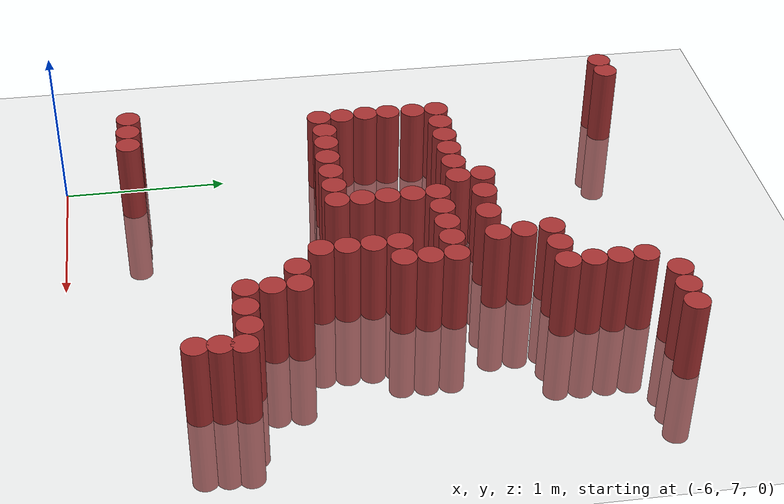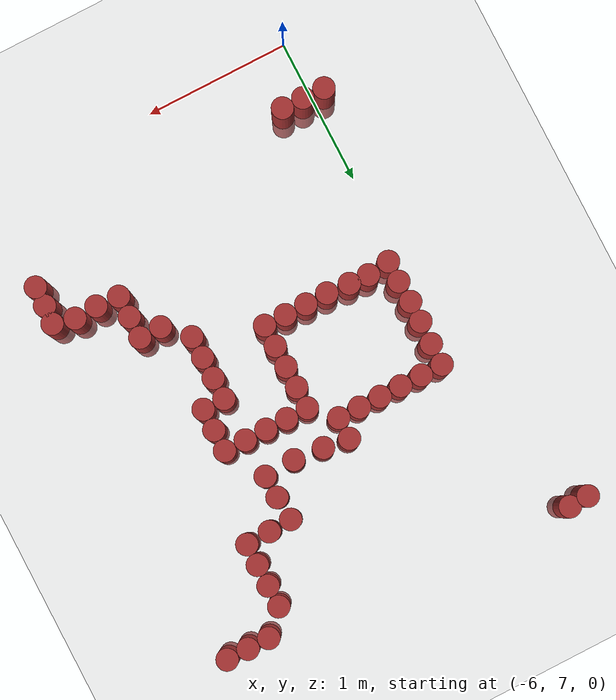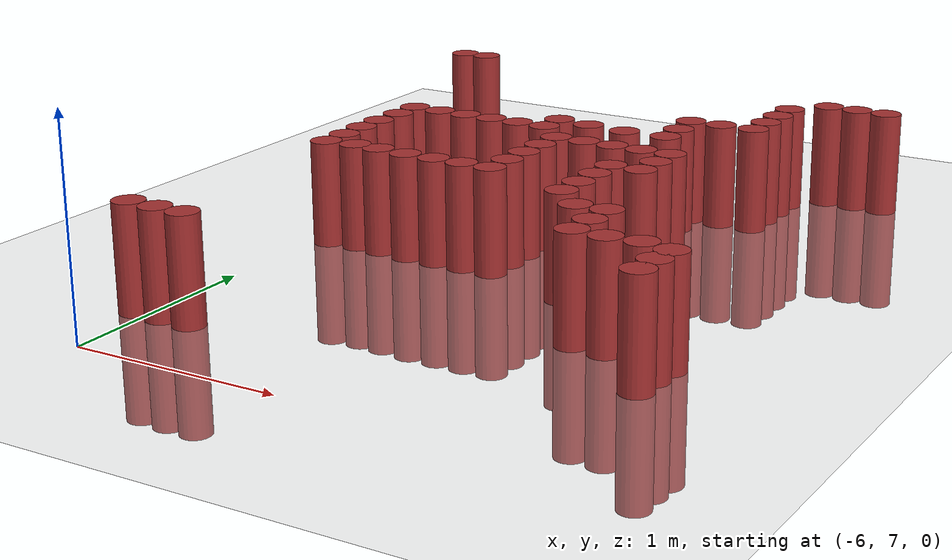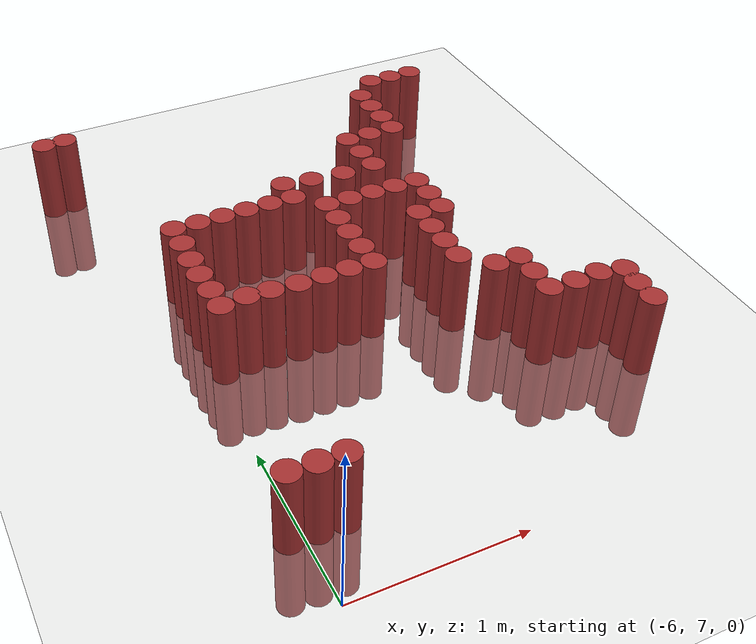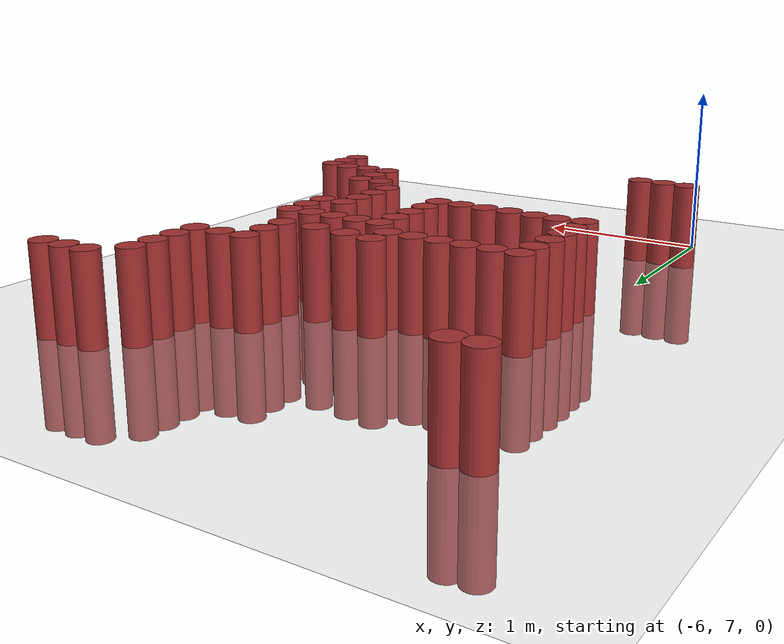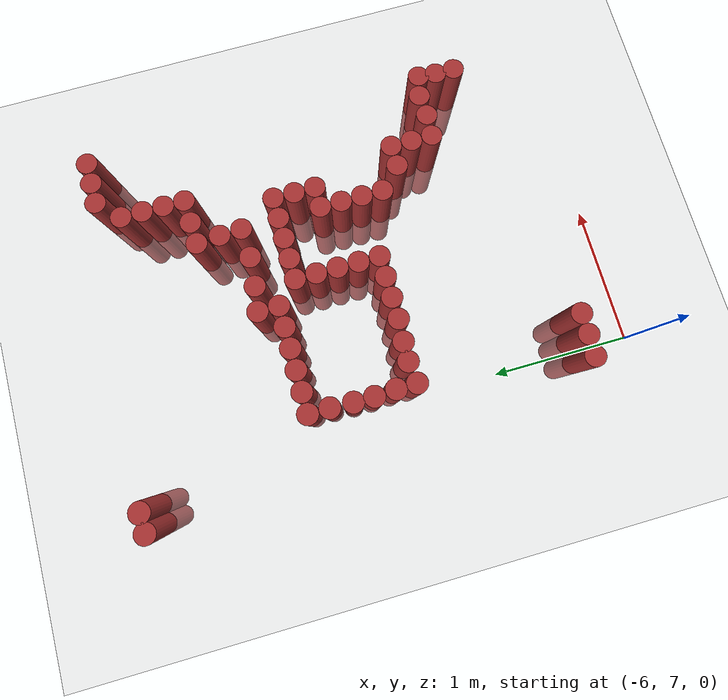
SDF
<sdf version="1.6">
 <world name="default">
  <model name="ground_plane">
   <static>1</static>
   <link name="link">
    <collision name="collision">
     <geometry><plane><normal>0 0 1</normal><size>100 100</size></plane></geometry>
     <surface><friction><ode><mu>100</mu><mu2>50</mu2></ode></friction></surface>
    </collision>
    <visual name="visual">
     <cast_shadows>0</cast_shadows>
     <geometry><plane><normal>0 0 1</normal><size>100 100</size></plane></geometry>
     <material>
      <script><uri>file://media/materials/scripts/gazebo.material</uri><name>Gazebo/Grey</name></script>
     </material>
    </visual>
   </link>
  </model>
  <model name="unit_cylinder_917">
   <static>1</static>
   <pose>-5.925 8.625 0 0 -0 0</pose>
   <link name="link">
    <inertial>
     <mass>1</mass>
     <inertia><ixx>0.145833</ixx><ixy>0</ixy><ixz>0</ixz><iyy>0.145833</iyy><iyz>0</iyz><izz>0.125</izz></inertia>
    </inertial>
    <collision name="collision">
     <geometry><cylinder><radius>0.075</radius><length>1</length></cylinder></geometry>
    </collision>
    <visual name="visual">
     <geometry><cylinder><radius>0.075</radius><length>1</length></cylinder></geometry>
     <material><ambient>0.648 0.192 0.192 1</ambient><diffuse>0.648 0.192 0.192 1</diffuse></material>
     <material>
      <script><name>Gazebo/Grey</name><uri>file://media/materials/scripts/gazebo.material</uri></script>
     </material>
    </visual>
   </link>
  </model>
  <model name="unit_cylinder_918">
   <static>1</static>
   <pose>-5.925 9.225 0 0 -0 0</pose>
   <link name="link">
    <inertial>
     <mass>1</mass>
     <inertia><ixx>0.145833</ixx><ixy>0</ixy><ixz>0</ixz><iyy>0.145833</iyy><iyz>0</iyz><izz>0.125</izz></inertia>
    </inertial>
    <collision name="collision">
     <geometry><cylinder><radius>0.075</radius><length>1</length></cylinder></geometry>
    </collision>
    <visual name="visual">
     <geometry><cylinder><radius>0.075</radius><length>1</length></cylinder></geometry>
     <material><ambient>0.648 0.192 0.192 1</ambient><diffuse>0.648 0.192 0.192 1</diffuse></material>
     <material>
      <script><name>Gazebo/Grey</name><uri>file://media/materials/scripts/gazebo.material</uri></script>
     </material>
    </visual>
   </link>
  </model>
  <model name="unit_cylinder_919">
   <static>1</static>
   <pose>-5.925 9.375 0 0 -0 0</pose>
   <link name="link">
    <inertial>
     <mass>1</mass>
     <inertia><ixx>0.145833</ixx><ixy>0</ixy><ixz>0</ixz><iyy>0.145833</iyy><iyz>0</iyz><izz>0.125</izz></inertia>
    </inertial>
    <collision name="collision">
     <geometry><cylinder><radius>0.075</radius><length>1</length></cylinder></geometry>
    </collision>
    <visual name="visual">
     <geometry><cylinder><radius>0.075</radius><length>1</length></cylinder></geometry>
     <material><ambient>0.648 0.192 0.192 1</ambient><diffuse>0.648 0.192 0.192 1</diffuse></material>
     <material>
      <script><name>Gazebo/Grey</name><uri>file://media/materials/scripts/gazebo.material</uri></script>
     </material>
    </visual>
   </link>
  </model>
  <model name="unit_cylinder_931">
   <static>1</static>
   <pose>-5.775 7.425 0 0 -0 0</pose>
   <link name="link">
    <inertial>
     <mass>1</mass>
     <inertia><ixx>0.145833</ixx><ixy>0</ixy><ixz>0</ixz><iyy>0.145833</iyy><iyz>0</iyz><izz>0.125</izz></inertia>
    </inertial>
    <collision name="collision">
     <geometry><cylinder><radius>0.075</radius><length>1</length></cylinder></geometry>
    </collision>
    <visual name="visual">
     <geometry><cylinder><radius>0.075</radius><length>1</length></cylinder></geometry>
     <material><ambient>0.648 0.192 0.192 1</ambient><diffuse>0.648 0.192 0.192 1</diffuse></material>
     <material>
      <script><name>Gazebo/Grey</name><uri>file://media/materials/scripts/gazebo.material</uri></script>
     </material>
    </visual>
   </link>
  </model>
  <model name="unit_cylinder_936">
   <static>1</static>
   <pose>-5.775 9.375 0 0 -0 0</pose>
   <link name="link">
    <inertial>
     <mass>1</mass>
     <inertia><ixx>0.145833</ixx><ixy>0</ixy><ixz>0</ixz><iyy>0.145833</iyy><iyz>0</iyz><izz>0.125</izz></inertia>
    </inertial>
    <collision name="collision">
     <geometry><cylinder><radius>0.075</radius><length>1</length></cylinder></geometry>
    </collision>
    <visual name="visual">
     <geometry><cylinder><radius>0.075</radius><length>1</length></cylinder></geometry>
     <material><ambient>0.648 0.192 0.192 1</ambient><diffuse>0.648 0.192 0.192 1</diffuse></material>
     <material>
      <script><name>Gazebo/Grey</name><uri>file://media/materials/scripts/gazebo.material</uri></script>
     </material>
    </visual>
   </link>
  </model>
  <model name="unit_cylinder_954">
   <static>1</static>
   <pose>-5.625 9.375 0 0 -0 0</pose>
   <link name="link">
    <inertial>
     <mass>1</mass>
     <inertia><ixx>0.145833</ixx><ixy>0</ixy><ixz>0</ixz><iyy>0.145833</iyy><iyz>0</iyz><izz>0.125</izz></inertia>
    </inertial>
    <collision name="collision">
     <geometry><cylinder><radius>0.075</radius><length>1</length></cylinder></geometry>
    </collision>
    <visual name="visual">
     <geometry><cylinder><radius>0.075</radius><length>1</length></cylinder></geometry>
     <material><ambient>0.648 0.192 0.192 1</ambient><diffuse>0.648 0.192 0.192 1</diffuse></material>
     <material>
      <script><name>Gazebo/Grey</name><uri>file://media/materials/scripts/gazebo.material</uri></script>
     </material>
    </visual>
   </link>
  </model>
  <model name="unit_cylinder_968">
   <static>1</static>
   <pose>-5.475 9.375 0 0 -0 0</pose>
   <link name="link">
    <inertial>
     <mass>1</mass>
     <inertia><ixx>0.145833</ixx><ixy>0</ixy><ixz>0</ixz><iyy>0.145833</iyy><iyz>0</iyz><izz>0.125</izz></inertia>
    </inertial>
    <collision name="collision">
     <geometry><cylinder><radius>0.075</radius><length>1</length></cylinder></geometry>
    </collision>
    <visual name="visual">
     <geometry><cylinder><radius>0.075</radius><length>1</length></cylinder></geometry>
     <material><ambient>0.648 0.192 0.192 1</ambient><diffuse>0.648 0.192 0.192 1</diffuse></material>
     <material>
      <script><name>Gazebo/Grey</name><uri>file://media/materials/scripts/gazebo.material</uri></script>
     </material>
    </visual>
   </link>
  </model>
  <model name="unit_cylinder_982">
   <static>1</static>
   <pose>-5.325 8.625 0 0 -0 0</pose>
   <link name="link">
    <inertial>
     <mass>1</mass>
     <inertia><ixx>0.145833</ixx><ixy>0</ixy><ixz>0</ixz><iyy>0.145833</iyy><iyz>0</iyz><izz>0.125</izz></inertia>
    </inertial>
    <collision name="collision">
     <geometry><cylinder><radius>0.075</radius><length>1</length></cylinder></geometry>
    </collision>
    <visual name="visual">
     <geometry><cylinder><radius>0.075</radius><length>1</length></cylinder></geometry>
     <material><ambient>0.648 0.192 0.192 1</ambient><diffuse>0.648 0.192 0.192 1</diffuse></material>
     <material>
      <script><name>Gazebo/Grey</name><uri>file://media/materials/scripts/gazebo.material</uri></script>
     </material>
    </visual>
   </link>
  </model>
  <model name="unit_cylinder_983">
   <static>1</static>
   <pose>-5.325 9.375 0 0 -0 0</pose>
   <link name="link">
    <inertial>
     <mass>1</mass>
     <inertia><ixx>0.145833</ixx><ixy>0</ixy><ixz>0</ixz><iyy>0.145833</iyy><iyz>0</iyz><izz>0.125</izz></inertia>
    </inertial>
    <collision name="collision">
     <geometry><cylinder><radius>0.075</radius><length>1</length></cylinder></geometry>
    </collision>
    <visual name="visual">
     <geometry><cylinder><radius>0.075</radius><length>1</length></cylinder></geometry>
     <material><ambient>0.648 0.192 0.192 1</ambient><diffuse>0.648 0.192 0.192 1</diffuse></material>
     <material>
      <script><name>Gazebo/Grey</name><uri>file://media/materials/scripts/gazebo.material</uri></script>
     </material>
    </visual>
   </link>
  </model>
  <model name="unit_cylinder_995">
   <static>1</static>
   <pose>-5.175 8.625 0 0 -0 0</pose>
   <link name="link">
    <inertial>
     <mass>1</mass>
     <inertia><ixx>0.145833</ixx><ixy>0</ixy><ixz>0</ixz><iyy>0.145833</iyy><iyz>0</iyz><izz>0.125</izz></inertia>
    </inertial>
    <collision name="collision">
     <geometry><cylinder><radius>0.075</radius><length>1</length></cylinder></geometry>
    </collision>
    <visual name="visual">
     <geometry><cylinder><radius>0.075</radius><length>1</length></cylinder></geometry>
     <material><ambient>0.648 0.192 0.192 1</ambient><diffuse>0.648 0.192 0.192 1</diffuse></material>
     <material>
      <script><name>Gazebo/Grey</name><uri>file://media/materials/scripts/gazebo.material</uri></script>
     </material>
    </visual>
   </link>
  </model>
  <model name="unit_cylinder_996">
   <static>1</static>
   <pose>-5.175 9.375 0 0 -0 0</pose>
   <link name="link">
    <inertial>
     <mass>1</mass>
     <inertia><ixx>0.145833</ixx><ixy>0</ixy><ixz>0</ixz><iyy>0.145833</iyy><iyz>0</iyz><izz>0.125</izz></inertia>
    </inertial>
    <collision name="collision">
     <geometry><cylinder><radius>0.075</radius><length>1</length></cylinder></geometry>
    </collision>
    <visual name="visual">
     <geometry><cylinder><radius>0.075</radius><length>1</length></cylinder></geometry>
     <material><ambient>0.648 0.192 0.192 1</ambient><diffuse>0.648 0.192 0.192 1</diffuse></material>
     <material>
      <script><name>Gazebo/Grey</name><uri>file://media/materials/scripts/gazebo.material</uri></script>
     </material>
    </visual>
   </link>
  </model>
  <model name="unit_cylinder_997">
   <static>1</static>
   <pose>-5.175 9.525 0 0 -0 0</pose>
   <link name="link">
    <inertial>
     <mass>1</mass>
     <inertia><ixx>0.145833</ixx><ixy>0</ixy><ixz>0</ixz><iyy>0.145833</iyy><iyz>0</iyz><izz>0.125</izz></inertia>
    </inertial>
    <collision name="collision">
     <geometry><cylinder><radius>0.075</radius><length>1</length></cylinder></geometry>
    </collision>
    <visual name="visual">
     <geometry><cylinder><radius>0.075</radius><length>1</length></cylinder></geometry>
     <material><ambient>0.648 0.192 0.192 1</ambient><diffuse>0.648 0.192 0.192 1</diffuse></material>
     <material>
      <script><name>Gazebo/Grey</name><uri>file://media/materials/scripts/gazebo.material</uri></script>
     </material>
    </visual>
   </link>
  </model>
  <model name="unit_cylinder_1009">
   <static>1</static>
   <pose>-5.025 8.625 0 0 -0 0</pose>
   <link name="link">
    <inertial>
     <mass>1</mass>
     <inertia><ixx>0.145833</ixx><ixy>0</ixy><ixz>0</ixz><iyy>0.145833</iyy><iyz>0</iyz><izz>0.125</izz></inertia>
    </inertial>
    <collision name="collision">
     <geometry><cylinder><radius>0.075</radius><length>1</length></cylinder></geometry>
    </collision>
    <visual name="visual">
     <geometry><cylinder><radius>0.075</radius><length>1</length></cylinder></geometry>
     <material><ambient>0.648 0.192 0.192 1</ambient><diffuse>0.648 0.192 0.192 1</diffuse></material>
     <material>
      <script><name>Gazebo/Grey</name><uri>file://media/materials/scripts/gazebo.material</uri></script>
     </material>
    </visual>
   </link>
  </model>
  <model name="unit_cylinder_1010">
   <static>1</static>
   <pose>-5.025 8.775 0 0 -0 0</pose>
   <link name="link">
    <inertial>
     <mass>1</mass>
     <inertia><ixx>0.145833</ixx><ixy>0</ixy><ixz>0</ixz><iyy>0.145833</iyy><iyz>0</iyz><izz>0.125</izz></inertia>
    </inertial>
    <collision name="collision">
     <geometry><cylinder><radius>0.075</radius><length>1</length></cylinder></geometry>
    </collision>
    <visual name="visual">
     <geometry><cylinder><radius>0.075</radius><length>1</length></cylinder></geometry>
     <material><ambient>0.648 0.192 0.192 1</ambient><diffuse>0.648 0.192 0.192 1</diffuse></material>
     <material>
      <script><name>Gazebo/Grey</name><uri>file://media/materials/scripts/gazebo.material</uri></script>
     </material>
    </visual>
   </link>
  </model>
  <model name="unit_cylinder_1011">
   <static>1</static>
   <pose>-5.025 8.925 0 0 -0 0</pose>
   <link name="link">
    <inertial>
     <mass>1</mass>
     <inertia><ixx>0.145833</ixx><ixy>0</ixy><ixz>0</ixz><iyy>0.145833</iyy><iyz>0</iyz><izz>0.125</izz></inertia>
    </inertial>
    <collision name="collision">
     <geometry><cylinder><radius>0.075</radius><length>1</length></cylinder></geometry>
    </collision>
    <visual name="visual">
     <geometry><cylinder><radius>0.075</radius><length>1</length></cylinder></geometry>
     <material><ambient>0.648 0.192 0.192 1</ambient><diffuse>0.648 0.192 0.192 1</diffuse></material>
     <material>
      <script><name>Gazebo/Grey</name><uri>file://media/materials/scripts/gazebo.material</uri></script>
     </material>
    </visual>
   </link>
  </model>
  <model name="unit_cylinder_1012">
   <static>1</static>
   <pose>-5.025 9.075 0 0 -0 0</pose>
   <link name="link">
    <inertial>
     <mass>1</mass>
     <inertia><ixx>0.145833</ixx><ixy>0</ixy><ixz>0</ixz><iyy>0.145833</iyy><iyz>0</iyz><izz>0.125</izz></inertia>
    </inertial>
    <collision name="collision">
     <geometry><cylinder><radius>0.075</radius><length>1</length></cylinder></geometry>
    </collision>
    <visual name="visual">
     <geometry><cylinder><radius>0.075</radius><length>1</length></cylinder></geometry>
     <material><ambient>0.648 0.192 0.192 1</ambient><diffuse>0.648 0.192 0.192 1</diffuse></material>
     <material>
      <script><name>Gazebo/Grey</name><uri>file://media/materials/scripts/gazebo.material</uri></script>
     </material>
    </visual>
   </link>
  </model>
  <model name="unit_cylinder_1013">
   <static>1</static>
   <pose>-5.025 9.225 0 0 -0 0</pose>
   <link name="link">
    <inertial>
     <mass>1</mass>
     <inertia><ixx>0.145833</ixx><ixy>0</ixy><ixz>0</ixz><iyy>0.145833</iyy><iyz>0</iyz><izz>0.125</izz></inertia>
    </inertial>
    <collision name="collision">
     <geometry><cylinder><radius>0.075</radius><length>1</length></cylinder></geometry>
    </collision>
    <visual name="visual">
     <geometry><cylinder><radius>0.075</radius><length>1</length></cylinder></geometry>
     <material><ambient>0.648 0.192 0.192 1</ambient><diffuse>0.648 0.192 0.192 1</diffuse></material>
     <material>
      <script><name>Gazebo/Grey</name><uri>file://media/materials/scripts/gazebo.material</uri></script>
     </material>
    </visual>
   </link>
  </model>
  <model name="unit_cylinder_1034">
   <static>1</static>
   <pose>-4.875 9.225 0 0 -0 0</pose>
   <link name="link">
    <inertial>
     <mass>1</mass>
     <inertia><ixx>0.145833</ixx><ixy>0</ixy><ixz>0</ixz><iyy>0.145833</iyy><iyz>0</iyz><izz>0.125</izz></inertia>
    </inertial>
    <collision name="collision">
     <geometry><cylinder><radius>0.075</radius><length>1</length></cylinder></geometry>
    </collision>
    <visual name="visual">
     <geometry><cylinder><radius>0.075</radius><length>1</length></cylinder></geometry>
     <material><ambient>0.648 0.192 0.192 1</ambient><diffuse>0.648 0.192 0.192 1</diffuse></material>
     <material>
      <script><name>Gazebo/Grey</name><uri>file://media/materials/scripts/gazebo.material</uri></script>
     </material>
    </visual>
   </link>
  </model>
  <model name="unit_cylinder_1050">
   <static>1</static>
   <pose>-4.725 9.225 0 0 -0 0</pose>
   <link name="link">
    <inertial>
     <mass>1</mass>
     <inertia><ixx>0.145833</ixx><ixy>0</ixy><ixz>0</ixz><iyy>0.145833</iyy><iyz>0</iyz><izz>0.125</izz></inertia>
    </inertial>
    <collision name="collision">
     <geometry><cylinder><radius>0.075</radius><length>1</length></cylinder></geometry>
    </collision>
    <visual name="visual">
     <geometry><cylinder><radius>0.075</radius><length>1</length></cylinder></geometry>
     <material><ambient>0.648 0.192 0.192 1</ambient><diffuse>0.648 0.192 0.192 1</diffuse></material>
     <material>
      <script><name>Gazebo/Grey</name><uri>file://media/materials/scripts/gazebo.material</uri></script>
     </material>
    </visual>
   </link>
  </model>
  <model name="unit_cylinder_1072">
   <static>1</static>
   <pose>-4.575 8.475 0 0 -0 0</pose>
   <link name="link">
    <inertial>
     <mass>1</mass>
     <inertia><ixx>0.145833</ixx><ixy>0</ixy><ixz>0</ixz><iyy>0.145833</iyy><iyz>0</iyz><izz>0.125</izz></inertia>
    </inertial>
    <collision name="collision">
     <geometry><cylinder><radius>0.075</radius><length>1</length></cylinder></geometry>
    </collision>
    <visual name="visual">
     <geometry><cylinder><radius>0.075</radius><length>1</length></cylinder></geometry>
     <material><ambient>0.648 0.192 0.192 1</ambient><diffuse>0.648 0.192 0.192 1</diffuse></material>
     <material>
      <script><name>Gazebo/Grey</name><uri>file://media/materials/scripts/gazebo.material</uri></script>
     </material>
    </visual>
   </link>
  </model>
  <model name="unit_cylinder_1073">
   <static>1</static>
   <pose>-4.575 8.625 0 0 -0 0</pose>
   <link name="link">
    <inertial>
     <mass>1</mass>
     <inertia><ixx>0.145833</ixx><ixy>0</ixy><ixz>0</ixz><iyy>0.145833</iyy><iyz>0</iyz><izz>0.125</izz></inertia>
    </inertial>
    <collision name="collision">
     <geometry><cylinder><radius>0.075</radius><length>1</length></cylinder></geometry>
    </collision>
    <visual name="visual">
     <geometry><cylinder><radius>0.075</radius><length>1</length></cylinder></geometry>
     <material><ambient>0.648 0.192 0.192 1</ambient><diffuse>0.648 0.192 0.192 1</diffuse></material>
     <material>
      <script><name>Gazebo/Grey</name><uri>file://media/materials/scripts/gazebo.material</uri></script>
     </material>
    </visual>
   </link>
  </model>
  <model name="unit_cylinder_1074">
   <static>1</static>
   <pose>-4.575 8.775 0 0 -0 0</pose>
   <link name="link">
    <inertial>
     <mass>1</mass>
     <inertia><ixx>0.145833</ixx><ixy>0</ixy><ixz>0</ixz><iyy>0.145833</iyy><iyz>0</iyz><izz>0.125</izz></inertia>
    </inertial>
    <collision name="collision">
     <geometry><cylinder><radius>0.075</radius><length>1</length></cylinder></geometry>
    </collision>
    <visual name="visual">
     <geometry><cylinder><radius>0.075</radius><length>1</length></cylinder></geometry>
     <material><ambient>0.648 0.192 0.192 1</ambient><diffuse>0.648 0.192 0.192 1</diffuse></material>
     <material>
      <script><name>Gazebo/Grey</name><uri>file://media/materials/scripts/gazebo.material</uri></script>
     </material>
    </visual>
   </link>
  </model>
  <model name="unit_cylinder_1075">
   <static>1</static>
   <pose>-4.575 8.925 0 0 -0 0</pose>
   <link name="link">
    <inertial>
     <mass>1</mass>
     <inertia><ixx>0.145833</ixx><ixy>0</ixy><ixz>0</ixz><iyy>0.145833</iyy><iyz>0</iyz><izz>0.125</izz></inertia>
    </inertial>
    <collision name="collision">
     <geometry><cylinder><radius>0.075</radius><length>1</length></cylinder></geometry>
    </collision>
    <visual name="visual">
     <geometry><cylinder><radius>0.075</radius><length>1</length></cylinder></geometry>
     <material><ambient>0.648 0.192 0.192 1</ambient><diffuse>0.648 0.192 0.192 1</diffuse></material>
     <material>
      <script><name>Gazebo/Grey</name><uri>file://media/materials/scripts/gazebo.material</uri></script>
     </material>
    </visual>
   </link>
  </model>
  <model name="unit_cylinder_1076">
   <static>1</static>
   <pose>-4.575 9.225 0 0 -0 0</pose>
   <link name="link">
    <inertial>
     <mass>1</mass>
     <inertia><ixx>0.145833</ixx><ixy>0</ixy><ixz>0</ixz><iyy>0.145833</iyy><iyz>0</iyz><izz>0.125</izz></inertia>
    </inertial>
    <collision name="collision">
     <geometry><cylinder><radius>0.075</radius><length>1</length></cylinder></geometry>
    </collision>
    <visual name="visual">
     <geometry><cylinder><radius>0.075</radius><length>1</length></cylinder></geometry>
     <material><ambient>0.648 0.192 0.192 1</ambient><diffuse>0.648 0.192 0.192 1</diffuse></material>
     <material>
      <script><name>Gazebo/Grey</name><uri>file://media/materials/scripts/gazebo.material</uri></script>
     </material>
    </visual>
   </link>
  </model>
  <model name="unit_cylinder_1098">
   <static>1</static>
   <pose>-4.425 8.325 0 0 -0 0</pose>
   <link name="link">
    <inertial>
     <mass>1</mass>
     <inertia><ixx>0.145833</ixx><ixy>0</ixy><ixz>0</ixz><iyy>0.145833</iyy><iyz>0</iyz><izz>0.125</izz></inertia>
    </inertial>
    <collision name="collision">
     <geometry><cylinder><radius>0.075</radius><length>1</length></cylinder></geometry>
    </collision>
    <visual name="visual">
     <geometry><cylinder><radius>0.075</radius><length>1</length></cylinder></geometry>
     <material><ambient>0.648 0.192 0.192 1</ambient><diffuse>0.648 0.192 0.192 1</diffuse></material>
     <material>
      <script><name>Gazebo/Grey</name><uri>file://media/materials/scripts/gazebo.material</uri></script>
     </material>
    </visual>
   </link>
  </model>
  <model name="unit_cylinder_1099">
   <static>1</static>
   <pose>-4.425 8.925 0 0 -0 0</pose>
   <link name="link">
    <inertial>
     <mass>1</mass>
     <inertia><ixx>0.145833</ixx><ixy>0</ixy><ixz>0</ixz><iyy>0.145833</iyy><iyz>0</iyz><izz>0.125</izz></inertia>
    </inertial>
    <collision name="collision">
     <geometry><cylinder><radius>0.075</radius><length>1</length></cylinder></geometry>
    </collision>
    <visual name="visual">
     <geometry><cylinder><radius>0.075</radius><length>1</length></cylinder></geometry>
     <material><ambient>0.648 0.192 0.192 1</ambient><diffuse>0.648 0.192 0.192 1</diffuse></material>
     <material>
      <script><name>Gazebo/Grey</name><uri>file://media/materials/scripts/gazebo.material</uri></script>
     </material>
    </visual>
   </link>
  </model>
  <model name="unit_cylinder_1100">
   <static>1</static>
   <pose>-4.425 9.075 0 0 -0 0</pose>
   <link name="link">
    <inertial>
     <mass>1</mass>
     <inertia><ixx>0.145833</ixx><ixy>0</ixy><ixz>0</ixz><iyy>0.145833</iyy><iyz>0</iyz><izz>0.125</izz></inertia>
    </inertial>
    <collision name="collision">
     <geometry><cylinder><radius>0.075</radius><length>1</length></cylinder></geometry>
    </collision>
    <visual name="visual">
     <geometry><cylinder><radius>0.075</radius><length>1</length></cylinder></geometry>
     <material><ambient>0.648 0.192 0.192 1</ambient><diffuse>0.648 0.192 0.192 1</diffuse></material>
     <material>
      <script><name>Gazebo/Grey</name><uri>file://media/materials/scripts/gazebo.material</uri></script>
     </material>
    </visual>
   </link>
  </model>
  <model name="unit_cylinder_1101">
   <static>1</static>
   <pose>-4.425 9.225 0 0 -0 0</pose>
   <link name="link">
    <inertial>
     <mass>1</mass>
     <inertia><ixx>0.145833</ixx><ixy>0</ixy><ixz>0</ixz><iyy>0.145833</iyy><iyz>0</iyz><izz>0.125</izz></inertia>
    </inertial>
    <collision name="collision">
     <geometry><cylinder><radius>0.075</radius><length>1</length></cylinder></geometry>
    </collision>
    <visual name="visual">
     <geometry><cylinder><radius>0.075</radius><length>1</length></cylinder></geometry>
     <material><ambient>0.648 0.192 0.192 1</ambient><diffuse>0.648 0.192 0.192 1</diffuse></material>
     <material>
      <script><name>Gazebo/Grey</name><uri>file://media/materials/scripts/gazebo.material</uri></script>
     </material>
    </visual>
   </link>
  </model>
  <model name="unit_cylinder_1113">
   <static>1</static>
   <pose>-4.275 8.025 0 0 -0 0</pose>
   <link name="link">
    <inertial>
     <mass>1</mass>
     <inertia><ixx>0.145833</ixx><ixy>0</ixy><ixz>0</ixz><iyy>0.145833</iyy><iyz>0</iyz><izz>0.125</izz></inertia>
    </inertial>
    <collision name="collision">
     <geometry><cylinder><radius>0.075</radius><length>1</length></cylinder></geometry>
    </collision>
    <visual name="visual">
     <geometry><cylinder><radius>0.075</radius><length>1</length></cylinder></geometry>
     <material><ambient>0.648 0.192 0.192 1</ambient><diffuse>0.648 0.192 0.192 1</diffuse></material>
     <material>
      <script><name>Gazebo/Grey</name><uri>file://media/materials/scripts/gazebo.material</uri></script>
     </material>
    </visual>
   </link>
  </model>
  <model name="unit_cylinder_1114">
   <static>1</static>
   <pose>-4.275 8.175 0 0 -0 0</pose>
   <link name="link">
    <inertial>
     <mass>1</mass>
     <inertia><ixx>0.145833</ixx><ixy>0</ixy><ixz>0</ixz><iyy>0.145833</iyy><iyz>0</iyz><izz>0.125</izz></inertia>
    </inertial>
    <collision name="collision">
     <geometry><cylinder><radius>0.075</radius><length>1</length></cylinder></geometry>
    </collision>
    <visual name="visual">
     <geometry><cylinder><radius>0.075</radius><length>1</length></cylinder></geometry>
     <material><ambient>0.648 0.192 0.192 1</ambient><diffuse>0.648 0.192 0.192 1</diffuse></material>
     <material>
      <script><name>Gazebo/Grey</name><uri>file://media/materials/scripts/gazebo.material</uri></script>
     </material>
    </visual>
   </link>
  </model>
  <model name="unit_cylinder_1115">
   <static>1</static>
   <pose>-4.275 8.325 0 0 -0 0</pose>
   <link name="link">
    <inertial>
     <mass>1</mass>
     <inertia><ixx>0.145833</ixx><ixy>0</ixy><ixz>0</ixz><iyy>0.145833</iyy><iyz>0</iyz><izz>0.125</izz></inertia>
    </inertial>
    <collision name="collision">
     <geometry><cylinder><radius>0.075</radius><length>1</length></cylinder></geometry>
    </collision>
    <visual name="visual">
     <geometry><cylinder><radius>0.075</radius><length>1</length></cylinder></geometry>
     <material><ambient>0.648 0.192 0.192 1</ambient><diffuse>0.648 0.192 0.192 1</diffuse></material>
     <material>
      <script><name>Gazebo/Grey</name><uri>file://media/materials/scripts/gazebo.material</uri></script>
     </material>
    </visual>
   </link>
  </model>
  <model name="unit_cylinder_1116">
   <static>1</static>
   <pose>-4.275 9.975 0 0 -0 0</pose>
   <link name="link">
    <inertial>
     <mass>1</mass>
     <inertia><ixx>0.145833</ixx><ixy>0</ixy><ixz>0</ixz><iyy>0.145833</iyy><iyz>0</iyz><izz>0.125</izz></inertia>
    </inertial>
    <collision name="collision">
     <geometry><cylinder><radius>0.075</radius><length>1</length></cylinder></geometry>
    </collision>
    <visual name="visual">
     <geometry><cylinder><radius>0.075</radius><length>1</length></cylinder></geometry>
     <material><ambient>0.648 0.192 0.192 1</ambient><diffuse>0.648 0.192 0.192 1</diffuse></material>
     <material>
      <script><name>Gazebo/Grey</name><uri>file://media/materials/scripts/gazebo.material</uri></script>
     </material>
    </visual>
   </link>
  </model>
  <model name="unit_cylinder_1117">
   <static>1</static>
   <pose>-4.275 10.125 0 0 -0 0</pose>
   <link name="link">
    <inertial>
     <mass>1</mass>
     <inertia><ixx>0.145833</ixx><ixy>0</ixy><ixz>0</ixz><iyy>0.145833</iyy><iyz>0</iyz><izz>0.125</izz></inertia>
    </inertial>
    <collision name="collision">
     <geometry><cylinder><radius>0.075</radius><length>1</length></cylinder></geometry>
    </collision>
    <visual name="visual">
     <geometry><cylinder><radius>0.075</radius><length>1</length></cylinder></geometry>
     <material><ambient>0.648 0.192 0.192 1</ambient><diffuse>0.648 0.192 0.192 1</diffuse></material>
     <material>
      <script><name>Gazebo/Grey</name><uri>file://media/materials/scripts/gazebo.material</uri></script>
     </material>
    </visual>
   </link>
  </model>
  <model name="unit_cylinder_1118">
   <static>1</static>
   <pose>-4.275 10.275 0 0 -0 0</pose>
   <link name="link">
    <inertial>
     <mass>1</mass>
     <inertia><ixx>0.145833</ixx><ixy>0</ixy><ixz>0</ixz><iyy>0.145833</iyy><iyz>0</iyz><izz>0.125</izz></inertia>
    </inertial>
    <collision name="collision">
     <geometry><cylinder><radius>0.075</radius><length>1</length></cylinder></geometry>
    </collision>
    <visual name="visual">
     <geometry><cylinder><radius>0.075</radius><length>1</length></cylinder></geometry>
     <material><ambient>0.648 0.192 0.192 1</ambient><diffuse>0.648 0.192 0.192 1</diffuse></material>
     <material>
      <script><name>Gazebo/Grey</name><uri>file://media/materials/scripts/gazebo.material</uri></script>
     </material>
    </visual>
   </link>
  </model>
  <model name="unit_cylinder_1131">
   <static>1</static>
   <pose>-4.125 10.425 0 0 -0 0</pose>
   <link name="link">
    <inertial>
     <mass>1</mass>
     <inertia><ixx>0.145833</ixx><ixy>0</ixy><ixz>0</ixz><iyy>0.145833</iyy><iyz>0</iyz><izz>0.125</izz></inertia>
    </inertial>
    <collision name="collision">
     <geometry><cylinder><radius>0.075</radius><length>1</length></cylinder></geometry>
    </collision>
    <visual name="visual">
     <geometry><cylinder><radius>0.075</radius><length>1</length></cylinder></geometry>
     <material><ambient>0.648 0.192 0.192 1</ambient><diffuse>0.648 0.192 0.192 1</diffuse></material>
     <material>
      <script><name>Gazebo/Grey</name><uri>file://media/materials/scripts/gazebo.material</uri></script>
     </material>
    </visual>
   </link>
  </model>
  <model name="unit_cylinder_1141">
   <static>1</static>
   <pose>-3.975 10.425 0 0 -0 0</pose>
   <link name="link">
    <inertial>
     <mass>1</mass>
     <inertia><ixx>0.145833</ixx><ixy>0</ixy><ixz>0</ixz><iyy>0.145833</iyy><iyz>0</iyz><izz>0.125</izz></inertia>
    </inertial>
    <collision name="collision">
     <geometry><cylinder><radius>0.075</radius><length>1</length></cylinder></geometry>
    </collision>
    <visual name="visual">
     <geometry><cylinder><radius>0.075</radius><length>1</length></cylinder></geometry>
     <material><ambient>0.648 0.192 0.192 1</ambient><diffuse>0.648 0.192 0.192 1</diffuse></material>
     <material>
      <script><name>Gazebo/Grey</name><uri>file://media/materials/scripts/gazebo.material</uri></script>
     </material>
    </visual>
   </link>
  </model>
  <model name="unit_cylinder_1148">
   <static>1</static>
   <pose>-3.825 7.725 0 0 -0 0</pose>
   <link name="link">
    <inertial>
     <mass>1</mass>
     <inertia><ixx>0.145833</ixx><ixy>0</ixy><ixz>0</ixz><iyy>0.145833</iyy><iyz>0</iyz><izz>0.125</izz></inertia>
    </inertial>
    <collision name="collision">
     <geometry><cylinder><radius>0.075</radius><length>1</length></cylinder></geometry>
    </collision>
    <visual name="visual">
     <geometry><cylinder><radius>0.075</radius><length>1</length></cylinder></geometry>
     <material><ambient>0.648 0.192 0.192 1</ambient><diffuse>0.648 0.192 0.192 1</diffuse></material>
     <material>
      <script><name>Gazebo/Grey</name><uri>file://media/materials/scripts/gazebo.material</uri></script>
     </material>
    </visual>
   </link>
  </model>
  <model name="unit_cylinder_1149">
   <static>1</static>
   <pose>-3.825 10.425 0 0 -0 0</pose>
   <link name="link">
    <inertial>
     <mass>1</mass>
     <inertia><ixx>0.145833</ixx><ixy>0</ixy><ixz>0</ixz><iyy>0.145833</iyy><iyz>0</iyz><izz>0.125</izz></inertia>
    </inertial>
    <collision name="collision">
     <geometry><cylinder><radius>0.075</radius><length>1</length></cylinder></geometry>
    </collision>
    <visual name="visual">
     <geometry><cylinder><radius>0.075</radius><length>1</length></cylinder></geometry>
     <material><ambient>0.648 0.192 0.192 1</ambient><diffuse>0.648 0.192 0.192 1</diffuse></material>
     <material>
      <script><name>Gazebo/Grey</name><uri>file://media/materials/scripts/gazebo.material</uri></script>
     </material>
    </visual>
   </link>
  </model>
  <model name="unit_cylinder_997_clone">
   <static>1</static>
   <pose>-4.99942 9.50007 0 0 -0 0</pose>
   <link name="link">
    <inertial>
     <mass>1</mass>
     <inertia><ixx>0.145833</ixx><ixy>0</ixy><ixz>0</ixz><iyy>0.145833</iyy><iyz>0</iyz><izz>0.125</izz></inertia>
    </inertial>
    <collision name="collision">
     <geometry><cylinder><radius>0.075</radius><length>1</length></cylinder></geometry>
    </collision>
    <visual name="visual">
     <geometry><cylinder><radius>0.075</radius><length>1</length></cylinder></geometry>
     <material><ambient>0.648 0.192 0.192 1</ambient><diffuse>0.648 0.192 0.192 1</diffuse></material>
     <material>
      <script><name>Gazebo/Grey</name><uri>file://media/materials/scripts/gazebo.material</uri></script>
     </material>
    </visual>
   </link>
  </model>
  <model name="unit_cylinder_997_clone_0">
   <static>1</static>
   <pose>-4.79413 9.48135 0 0 -0 0</pose>
   <link name="link">
    <inertial>
     <mass>1</mass>
     <inertia><ixx>0.145833</ixx><ixy>0</ixy><ixz>0</ixz><iyy>0.145833</iyy><iyz>0</iyz><izz>0.125</izz></inertia>
    </inertial>
    <collision name="collision">
     <geometry><cylinder><radius>0.075</radius><length>1</length></cylinder></geometry>
    </collision>
    <visual name="visual">
     <geometry><cylinder><radius>0.075</radius><length>1</length></cylinder></geometry>
     <material><ambient>0.648 0.192 0.192 1</ambient><diffuse>0.648 0.192 0.192 1</diffuse></material>
     <material>
      <script><name>Gazebo/Grey</name><uri>file://media/materials/scripts/gazebo.material</uri></script>
     </material>
    </visual>
   </link>
  </model>
  <model name="unit_cylinder_917_clone_1">
   <static>1</static>
   <pose>-5.47808 8.6236 0 0 -0 0</pose>
   <link name="link">
    <inertial>
     <mass>1</mass>
     <inertia><ixx>0.145833</ixx><ixy>0</ixy><ixz>0</ixz><iyy>0.145833</iyy><iyz>0</iyz><izz>0.125</izz></inertia>
    </inertial>
    <collision name="collision">
     <geometry><cylinder><radius>0.075</radius><length>1</length></cylinder></geometry>
    </collision>
    <visual name="visual">
     <geometry><cylinder><radius>0.075</radius><length>1</length></cylinder></geometry>
     <material><ambient>0.648 0.192 0.192 1</ambient><diffuse>0.648 0.192 0.192 1</diffuse></material>
     <material>
      <script><name>Gazebo/Grey</name><uri>file://media/materials/scripts/gazebo.material</uri></script>
     </material>
    </visual>
   </link>
  </model>
  <model name="unit_cylinder_917_clone">
   <static>1</static>
   <pose>-5.63572 8.6357 0 0 -0 0</pose>
   <link name="link">
    <inertial>
     <mass>1</mass>
     <inertia><ixx>0.145833</ixx><ixy>0</ixy><ixz>0</ixz><iyy>0.145833</iyy><iyz>0</iyz><izz>0.125</izz></inertia>
    </inertial>
    <collision name="collision">
     <geometry><cylinder><radius>0.075</radius><length>1</length></cylinder></geometry>
    </collision>
    <visual name="visual">
     <geometry><cylinder><radius>0.075</radius><length>1</length></cylinder></geometry>
     <material><ambient>0.648 0.192 0.192 1</ambient><diffuse>0.648 0.192 0.192 1</diffuse></material>
     <material>
      <script><name>Gazebo/Grey</name><uri>file://media/materials/scripts/gazebo.material</uri></script>
     </material>
    </visual>
   </link>
  </model>
  <model name="unit_cylinder_917_clone_0">
   <static>1</static>
   <pose>-5.77151 8.64237 0 0 -0 0</pose>
   <link name="link">
    <inertial>
     <mass>1</mass>
     <inertia><ixx>0.145833</ixx><ixy>0</ixy><ixz>0</ixz><iyy>0.145833</iyy><iyz>0</iyz><izz>0.125</izz></inertia>
    </inertial>
    <collision name="collision">
     <geometry><cylinder><radius>0.075</radius><length>1</length></cylinder></geometry>
    </collision>
    <visual name="visual">
     <geometry><cylinder><radius>0.075</radius><length>1</length></cylinder></geometry>
     <material><ambient>0.648 0.192 0.192 1</ambient><diffuse>0.648 0.192 0.192 1</diffuse></material>
     <material>
      <script><name>Gazebo/Grey</name><uri>file://media/materials/scripts/gazebo.material</uri></script>
     </material>
    </visual>
   </link>
  </model>
  <model name="unit_cylinder_816_clone_2">
   <static>1</static>
   <pose>-6.07378 7.43218 0 0 -0 0</pose>
   <link name="link">
    <inertial>
     <mass>1</mass>
     <inertia><ixx>0.145833</ixx><ixy>0</ixy><ixz>0</ixz><iyy>0.145833</iyy><iyz>0</iyz><izz>0.125</izz></inertia>
    </inertial>
    <collision name="collision">
     <geometry><cylinder><radius>0.075</radius><length>1</length></cylinder></geometry>
    </collision>
    <visual name="visual">
     <geometry><cylinder><radius>0.075</radius><length>1</length></cylinder></geometry>
     <material><ambient>0.648 0.192 0.192 1</ambient><diffuse>0.648 0.192 0.192 1</diffuse></material>
     <material>
      <script><name>Gazebo/Grey</name><uri>file://media/materials/scripts/gazebo.material</uri></script>
     </material>
    </visual>
   </link>
  </model>
  <model name="unit_cylinder_816_clone_3">
   <static>1</static>
   <pose>-5.92289 7.42624 0 0 -0 0</pose>
   <link name="link">
    <inertial>
     <mass>1</mass>
     <inertia><ixx>0.145833</ixx><ixy>0</ixy><ixz>0</ixz><iyy>0.145833</iyy><iyz>0</iyz><izz>0.125</izz></inertia>
    </inertial>
    <collision name="collision">
     <geometry><cylinder><radius>0.075</radius><length>1</length></cylinder></geometry>
    </collision>
    <visual name="visual">
     <geometry><cylinder><radius>0.075</radius><length>1</length></cylinder></geometry>
     <material><ambient>0.648 0.192 0.192 1</ambient><diffuse>0.648 0.192 0.192 1</diffuse></material>
     <material>
      <script><name>Gazebo/Grey</name><uri>file://media/materials/scripts/gazebo.material</uri></script>
     </material>
    </visual>
   </link>
  </model>
  <model name="unit_cylinder_918_clone">
   <static>1</static>
   <pose>-5.9318 9.06516 0 0 -0 0</pose>
   <link name="link">
    <inertial>
     <mass>1</mass>
     <inertia><ixx>0.145833</ixx><ixy>0</ixy><ixz>0</ixz><iyy>0.145833</iyy><iyz>0</iyz><izz>0.125</izz></inertia>
    </inertial>
    <collision name="collision">
     <geometry><cylinder><radius>0.075</radius><length>1</length></cylinder></geometry>
    </collision>
    <visual name="visual">
     <geometry><cylinder><radius>0.075</radius><length>1</length></cylinder></geometry>
     <material><ambient>0.648 0.192 0.192 1</ambient><diffuse>0.648 0.192 0.192 1</diffuse></material>
     <material>
      <script><name>Gazebo/Grey</name><uri>file://media/materials/scripts/gazebo.material</uri></script>
     </material>
    </visual>
   </link>
  </model>
  <model name="unit_cylinder_918_clone_0">
   <static>1</static>
   <pose>-5.93286 8.92122 0 0 -0 0</pose>
   <link name="link">
    <inertial>
     <mass>1</mass>
     <inertia><ixx>0.145833</ixx><ixy>0</ixy><ixz>0</ixz><iyy>0.145833</iyy><iyz>0</iyz><izz>0.125</izz></inertia>
    </inertial>
    <collision name="collision">
     <geometry><cylinder><radius>0.075</radius><length>1</length></cylinder></geometry>
    </collision>
    <visual name="visual">
     <geometry><cylinder><radius>0.075</radius><length>1</length></cylinder></geometry>
     <material><ambient>0.648 0.192 0.192 1</ambient><diffuse>0.648 0.192 0.192 1</diffuse></material>
     <material>
      <script><name>Gazebo/Grey</name><uri>file://media/materials/scripts/gazebo.material</uri></script>
     </material>
    </visual>
   </link>
  </model>
  <model name="unit_cylinder_918_clone_1">
   <static>1</static>
   <pose>-5.92499 8.77042 0 0 -0 0</pose>
   <link name="link">
    <inertial>
     <mass>1</mass>
     <inertia><ixx>0.145833</ixx><ixy>0</ixy><ixz>0</ixz><iyy>0.145833</iyy><iyz>0</iyz><izz>0.125</izz></inertia>
    </inertial>
    <collision name="collision">
     <geometry><cylinder><radius>0.075</radius><length>1</length></cylinder></geometry>
    </collision>
    <visual name="visual">
     <geometry><cylinder><radius>0.075</radius><length>1</length></cylinder></geometry>
     <material><ambient>0.648 0.192 0.192 1</ambient><diffuse>0.648 0.192 0.192 1</diffuse></material>
     <material>
      <script><name>Gazebo/Grey</name><uri>file://media/materials/scripts/gazebo.material</uri></script>
     </material>
    </visual>
   </link>
  </model>
  <model name="unit_cylinder_845_clone">
   <static>1</static>
   <pose>-6.36865 10.5594 0 0 -0 0</pose>
   <link name="link">
    <inertial>
     <mass>1</mass>
     <inertia><ixx>0.145833</ixx><ixy>0</ixy><ixz>0</ixz><iyy>0.145833</iyy><iyz>0</iyz><izz>0.125</izz></inertia>
    </inertial>
    <collision name="collision">
     <geometry><cylinder><radius>0.075</radius><length>1</length></cylinder></geometry>
    </collision>
    <visual name="visual">
     <geometry><cylinder><radius>0.075</radius><length>1</length></cylinder></geometry>
     <material><ambient>0.648 0.192 0.192 1</ambient><diffuse>0.648 0.192 0.192 1</diffuse></material>
     <material>
      <script><name>Gazebo/Grey</name><uri>file://media/materials/scripts/gazebo.material</uri></script>
     </material>
    </visual>
   </link>
  </model>
  <model name="unit_cylinder_845_clone_0">
   <static>1</static>
   <pose>-6.23401 10.5668 0 0 -0 0</pose>
   <link name="link">
    <inertial>
     <mass>1</mass>
     <inertia><ixx>0.145833</ixx><ixy>0</ixy><ixz>0</ixz><iyy>0.145833</iyy><iyz>0</iyz><izz>0.125</izz></inertia>
    </inertial>
    <collision name="collision">
     <geometry><cylinder><radius>0.075</radius><length>1</length></cylinder></geometry>
    </collision>
    <visual name="visual">
     <geometry><cylinder><radius>0.075</radius><length>1</length></cylinder></geometry>
     <material><ambient>0.648 0.192 0.192 1</ambient><diffuse>0.648 0.192 0.192 1</diffuse></material>
     <material>
      <script><name>Gazebo/Grey</name><uri>file://media/materials/scripts/gazebo.material</uri></script>
     </material>
    </visual>
   </link>
  </model>
  <model name="unit_cylinder_997_clone_0_clone_0_clone">
   <static>1</static>
   <pose>-4.59994 9.81279 0 0 -0 0</pose>
   <link name="link">
    <inertial>
     <mass>1</mass>
     <inertia><ixx>0.145833</ixx><ixy>0</ixy><ixz>0</ixz><iyy>0.145833</iyy><iyz>0</iyz><izz>0.125</izz></inertia>
    </inertial>
    <collision name="collision">
     <geometry><cylinder><radius>0.075</radius><length>1</length></cylinder></geometry>
    </collision>
    <visual name="visual">
     <geometry><cylinder><radius>0.075</radius><length>1</length></cylinder></geometry>
     <material><ambient>0.648 0.192 0.192 1</ambient><diffuse>0.648 0.192 0.192 1</diffuse></material>
     <material>
      <script><name>Gazebo/Grey</name><uri>file://media/materials/scripts/gazebo.material</uri></script>
     </material>
    </visual>
   </link>
  </model>
  <model name="unit_cylinder_997_clone_0_clone_0_clone_1">
   <static>1</static>
   <pose>-4.27605 9.82662 0 0 -0 0</pose>
   <link name="link">
    <inertial>
     <mass>1</mass>
     <inertia><ixx>0.145833</ixx><ixy>0</ixy><ixz>0</ixz><iyy>0.145833</iyy><iyz>0</iyz><izz>0.125</izz></inertia>
    </inertial>
    <collision name="collision">
     <geometry><cylinder><radius>0.075</radius><length>1</length></cylinder></geometry>
    </collision>
    <visual name="visual">
     <geometry><cylinder><radius>0.075</radius><length>1</length></cylinder></geometry>
     <material><ambient>0.648 0.192 0.192 1</ambient><diffuse>0.648 0.192 0.192 1</diffuse></material>
     <material>
      <script><name>Gazebo/Grey</name><uri>file://media/materials/scripts/gazebo.material</uri></script>
     </material>
    </visual>
   </link>
  </model>
  <model name="unit_cylinder_997_clone_0_clone_0_clone_0">
   <static>1</static>
   <pose>-4.4426 9.8195 0 0 -0 0</pose>
   <link name="link">
    <inertial>
     <mass>1</mass>
     <inertia><ixx>0.145833</ixx><ixy>0</ixy><ixz>0</ixz><iyy>0.145833</iyy><iyz>0</iyz><izz>0.125</izz></inertia>
    </inertial>
    <collision name="collision">
     <geometry><cylinder><radius>0.075</radius><length>1</length></cylinder></geometry>
    </collision>
    <visual name="visual">
     <geometry><cylinder><radius>0.075</radius><length>1</length></cylinder></geometry>
     <material><ambient>0.648 0.192 0.192 1</ambient><diffuse>0.648 0.192 0.192 1</diffuse></material>
     <material>
      <script><name>Gazebo/Grey</name><uri>file://media/materials/scripts/gazebo.material</uri></script>
     </material>
    </visual>
   </link>
  </model>
  <model name="unit_cylinder_997_clone_0_clone_0_clone_clone">
   <static>1</static>
   <pose>-4.58717 9.6468 0 0 -0 0</pose>
   <link name="link">
    <inertial>
     <mass>1</mass>
     <inertia><ixx>0.145833</ixx><ixy>0</ixy><ixz>0</ixz><iyy>0.145833</iyy><iyz>0</iyz><izz>0.125</izz></inertia>
    </inertial>
    <collision name="collision">
     <geometry><cylinder><radius>0.075</radius><length>1</length></cylinder></geometry>
    </collision>
    <visual name="visual">
     <geometry><cylinder><radius>0.075</radius><length>1</length></cylinder></geometry>
     <material><ambient>0.648 0.192 0.192 1</ambient><diffuse>0.648 0.192 0.192 1</diffuse></material>
     <material>
      <script><name>Gazebo/Grey</name><uri>file://media/materials/scripts/gazebo.material</uri></script>
     </material>
    </visual>
   </link>
  </model>
  <model name="unit_cylinder_997_clone_0_clone_0_clone_clone_0">
   <static>1</static>
   <pose>-4.58199 9.49184 0 0 -0 0</pose>
   <link name="link">
    <inertial>
     <mass>1</mass>
     <inertia><ixx>0.145833</ixx><ixy>0</ixy><ixz>0</ixz><iyy>0.145833</iyy><iyz>0</iyz><izz>0.125</izz></inertia>
    </inertial>
    <collision name="collision">
     <geometry><cylinder><radius>0.075</radius><length>1</length></cylinder></geometry>
    </collision>
    <visual name="visual">
     <geometry><cylinder><radius>0.075</radius><length>1</length></cylinder></geometry>
     <material><ambient>0.648 0.192 0.192 1</ambient><diffuse>0.648 0.192 0.192 1</diffuse></material>
     <material>
      <script><name>Gazebo/Grey</name><uri>file://media/materials/scripts/gazebo.material</uri></script>
     </material>
    </visual>
   </link>
  </model>
  <model name="unit_cylinder_1113_clone">
   <static>1</static>
   <pose>-4.11651 8.01384 0 0 -0 0</pose>
   <link name="link">
    <inertial>
     <mass>1</mass>
     <inertia><ixx>0.145833</ixx><ixy>0</ixy><ixz>0</ixz><iyy>0.145833</iyy><iyz>0</iyz><izz>0.125</izz></inertia>
    </inertial>
    <collision name="collision">
     <geometry><cylinder><radius>0.075</radius><length>1</length></cylinder></geometry>
    </collision>
    <visual name="visual">
     <geometry><cylinder><radius>0.075</radius><length>1</length></cylinder></geometry>
     <material><ambient>0.648 0.192 0.192 1</ambient><diffuse>0.648 0.192 0.192 1</diffuse></material>
     <material>
      <script><name>Gazebo/Grey</name><uri>file://media/materials/scripts/gazebo.material</uri></script>
     </material>
    </visual>
   </link>
  </model>
  <model name="unit_cylinder_1113_clone_0">
   <static>1</static>
   <pose>-3.95996 8.02183 0 0 -0 0</pose>
   <link name="link">
    <inertial>
     <mass>1</mass>
     <inertia><ixx>0.145833</ixx><ixy>0</ixy><ixz>0</ixz><iyy>0.145833</iyy><iyz>0</iyz><izz>0.125</izz></inertia>
    </inertial>
    <collision name="collision">
     <geometry><cylinder><radius>0.075</radius><length>1</length></cylinder></geometry>
    </collision>
    <visual name="visual">
     <geometry><cylinder><radius>0.075</radius><length>1</length></cylinder></geometry>
     <material><ambient>0.648 0.192 0.192 1</ambient><diffuse>0.648 0.192 0.192 1</diffuse></material>
     <material>
      <script><name>Gazebo/Grey</name><uri>file://media/materials/scripts/gazebo.material</uri></script>
     </material>
    </visual>
   </link>
  </model>
  <model name="unit_cylinder_1113_clone_1">
   <static>1</static>
   <pose>-3.81253 7.9853 0 0 -0 0</pose>
   <link name="link">
    <inertial>
     <mass>1</mass>
     <inertia><ixx>0.145833</ixx><ixy>0</ixy><ixz>0</ixz><iyy>0.145833</iyy><iyz>0</iyz><izz>0.125</izz></inertia>
    </inertial>
    <collision name="collision">
     <geometry><cylinder><radius>0.075</radius><length>1</length></cylinder></geometry>
    </collision>
    <visual name="visual">
     <geometry><cylinder><radius>0.075</radius><length>1</length></cylinder></geometry>
     <material><ambient>0.648 0.192 0.192 1</ambient><diffuse>0.648 0.192 0.192 1</diffuse></material>
     <material>
      <script><name>Gazebo/Grey</name><uri>file://media/materials/scripts/gazebo.material</uri></script>
     </material>
    </visual>
   </link>
  </model>
  <model name="unit_cylinder_1113_clone_2">
   <static>1</static>
   <pose>-3.82291 7.85936 0 0 -0 0</pose>
   <link name="link">
    <inertial>
     <mass>1</mass>
     <inertia><ixx>0.145833</ixx><ixy>0</ixy><ixz>0</ixz><iyy>0.145833</iyy><iyz>0</iyz><izz>0.125</izz></inertia>
    </inertial>
    <collision name="collision">
     <geometry><cylinder><radius>0.075</radius><length>1</length></cylinder></geometry>
    </collision>
    <visual name="visual">
     <geometry><cylinder><radius>0.075</radius><length>1</length></cylinder></geometry>
     <material><ambient>0.648 0.192 0.192 1</ambient><diffuse>0.648 0.192 0.192 1</diffuse></material>
     <material>
      <script><name>Gazebo/Grey</name><uri>file://media/materials/scripts/gazebo.material</uri></script>
     </material>
    </visual>
   </link>
  </model>
 </world>
</sdf>
